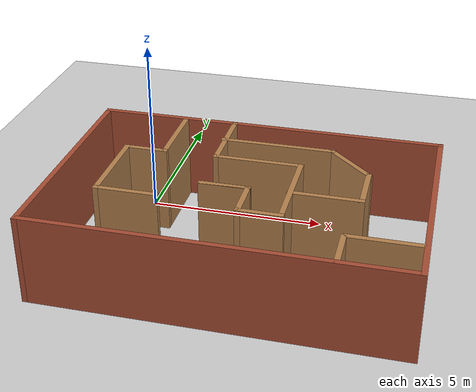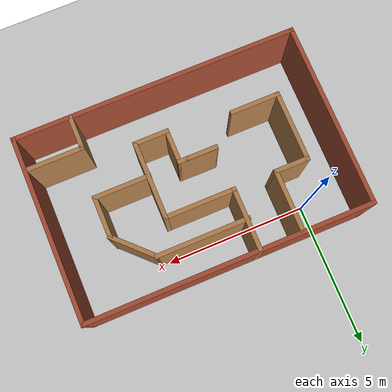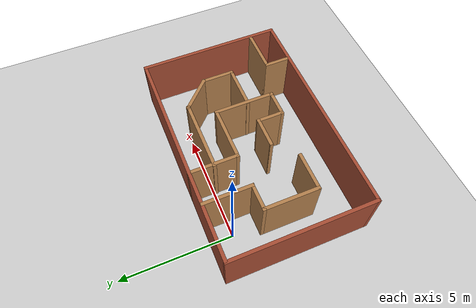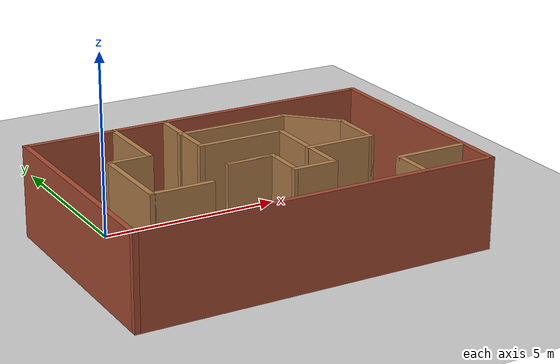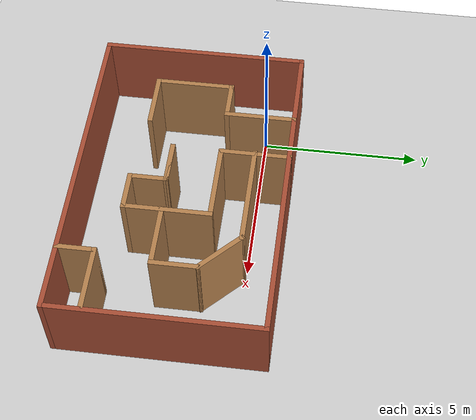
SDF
<sdf version="1.7">
 <world name="default">
  <light name="sun" type="directional">
   <pose>0 0 10 0 -0 0</pose>
   <diffuse>0.8 0.8 0.8 1</diffuse>
   <specular>0.2 0.2 0.2 1</specular>
   <attenuation>
    <range>1000</range>
    <constant>0.9</constant>
    <linear>0.01</linear>
    <quadratic>0.001</quadratic>
   </attenuation>
   <direction>-0.5 0.1 -0.9</direction>
   <spot><inner_angle>0</inner_angle><outer_angle>0</outer_angle><falloff>0</falloff></spot>
  </light>
  <model name="ground_plane">
   <static>1</static>
   <link name="link">
    <collision name="collision">
     <geometry><plane><normal>0 0 1</normal><size>100 100</size></plane></geometry>
     <surface>
      <contact><collide_bitmask>65535</collide_bitmask></contact>
      <friction><ode><mu>100</mu><mu2>50</mu2></ode></friction>
     </surface>
    </collision>
    <visual name="visual">
     <cast_shadows>0</cast_shadows>
     <geometry><plane><normal>0 0 1</normal><size>100 100</size></plane></geometry>
     <material>
      <script><uri>file://media/materials/scripts/gazebo.material</uri><name>Gazebo/Grey</name></script>
     </material>
    </visual>
   </link>
  </model>
  <gravity>0 0 -9.8</gravity>
  <magnetic_field>6e-06 2.3e-05 -4.2e-05</magnetic_field>
  <atmosphere type="adiabatic"/>
  <physics type="ode">
   <max_step_size>0.001</max_step_size>
   <real_time_factor>1</real_time_factor>
   <real_time_update_rate>1000</real_time_update_rate>
  </physics>
  <scene><ambient>0.4 0.4 0.4 1</ambient><background>0.7 0.7 0.7 1</background><shadows>1</shadows></scene>
  <audio><device>default</device></audio>
  <spherical_coordinates>
   <surface_model>EARTH_WGS84</surface_model>
   <latitude_deg>0</latitude_deg>
   <longitude_deg>0</longitude_deg>
   <elevation>0</elevation>
   <heading_deg>0</heading_deg>
  </spherical_coordinates>
  <model name="maze">
   <pose>3.24391 -1.62073 0 0 -0 0</pose>
   <link name="Wall_0">
    <collision name="Wall_0_Collision">
     <geometry><box><size>10 0.15 2.5</size></box></geometry>
     <pose>0 0 1.25 0 -0 0</pose>
    </collision>
    <visual name="Wall_0_Visual">
     <pose>0 0 1.25 0 -0 0</pose>
     <geometry><box><size>10 0.15 2.5</size></box></geometry>
     <material>
      <script><uri>file://media/materials/scripts/gazebo.material</uri><name>Gazebo/Bricks</name></script>
      <ambient>1 1 1 1</ambient>
     </material>
     <meta><layer>0</layer></meta>
    </visual>
    <pose>-0 2.5825 0 0 -0 0</pose>
   </link>
   <link name="Wall_1">
    <collision name="Wall_1_Collision">
     <geometry><box><size>6.5 0.15 2.5</size></box></geometry>
     <pose>0 0 1.25 0 -0 0</pose>
    </collision>
    <visual name="Wall_1_Visual">
     <pose>0 0 1.25 0 -0 0</pose>
     <geometry><box><size>6.5 0.15 2.5</size></box></geometry>
     <material>
      <script><uri>file://media/materials/scripts/gazebo.material</uri><name>Gazebo/Bricks</name></script>
      <ambient>1 1 1 1</ambient>
     </material>
     <meta><layer>0</layer></meta>
    </visual>
    <pose>4.925 -0.5925 0 0 -0 -1.5708</pose>
   </link>
   <link name="Wall_15">
    <collision name="Wall_15_Collision">
     <geometry><box><size>2.75 0.15 2.5</size></box></geometry>
     <pose>0 0 1.25 0 -0 0</pose>
    </collision>
    <visual name="Wall_15_Visual">
     <pose>0 0 1.25 0 -0 0</pose>
     <geometry><box><size>2.75 0.15 2.5</size></box></geometry>
     <material>
      <script><uri>file://media/materials/scripts/gazebo.material</uri><name>Gazebo/Wood</name></script>
      <ambient>1 1 1 1</ambient>
     </material>
     <meta><layer>0</layer></meta>
    </visual>
    <pose>1.346 -0.81543 0 0 -0 -1.5708</pose>
   </link>
   <link name="Wall_16">
    <collision name="Wall_16_Collision">
     <geometry><box><size>1.25 0.15 2.5</size></box></geometry>
     <pose>0 0 1.25 0 -0 0</pose>
    </collision>
    <visual name="Wall_16_Visual">
     <pose>0 0 1.25 0 -0 0</pose>
     <geometry><box><size>1.25 0.15 2.5</size></box></geometry>
     <material>
      <script><uri>file://media/materials/scripts/gazebo.material</uri><name>Gazebo/Wood</name></script>
      <ambient>1 1 1 1</ambient>
     </material>
     <meta><layer>0</layer></meta>
    </visual>
    <pose>0.795999 -2.11543 0 0 -0 3.14159</pose>
   </link>
   <link name="Wall_17">
    <collision name="Wall_17_Collision">
     <geometry><box><size>1.25 0.15 2.5</size></box></geometry>
     <pose>0 0 1.25 0 -0 0</pose>
    </collision>
    <visual name="Wall_17_Visual">
     <pose>0 0 1.25 0 -0 0</pose>
     <geometry><box><size>1.25 0.15 2.5</size></box></geometry>
     <material>
      <script><uri>file://media/materials/scripts/gazebo.material</uri><name>Gazebo/Wood</name></script>
      <ambient>1 1 1 1</ambient>
     </material>
     <meta><layer>0</layer></meta>
    </visual>
    <pose>0.245999 -1.56543 0 0 -0 1.5708</pose>
   </link>
   <link name="Wall_18">
    <collision name="Wall_18_Collision">
     <geometry><box><size>1.36505 0.15 2.5</size></box></geometry>
     <pose>0 0 1.25 0 -0 0</pose>
    </collision>
    <visual name="Wall_18_Visual">
     <pose>0 0 1.25 0 -0 0</pose>
     <geometry><box><size>1.36505 0.15 2.5</size></box></geometry>
     <material>
      <script><uri>file://media/materials/scripts/gazebo.material</uri><name>Gazebo/Wood</name></script>
      <ambient>1 1 1 1</ambient>
     </material>
     <meta><layer>0</layer></meta>
    </visual>
    <pose>-0.361501 -1.00968 0 0 -0 3.13213</pose>
   </link>
   <link name="Wall_2">
    <collision name="Wall_2_Collision">
     <geometry><box><size>10 0.15 2.5</size></box></geometry>
     <pose>0 0 1.25 0 -0 0</pose>
    </collision>
    <visual name="Wall_2_Visual">
     <pose>0 0 1.25 0 -0 0</pose>
     <geometry><box><size>10 0.15 2.5</size></box></geometry>
     <material>
      <script><uri>file://media/materials/scripts/gazebo.material</uri><name>Gazebo/Bricks</name></script>
      <ambient>1 1 1 1</ambient>
     </material>
     <meta><layer>0</layer></meta>
    </visual>
    <pose>-0 -3.7675 0 0 -0 3.14159</pose>
   </link>
   <link name="Wall_21">
    <collision name="Wall_21_Collision">
     <geometry><box><size>2.5 0.15 2.5</size></box></geometry>
     <pose>0 0 1.25 0 -0 0</pose>
    </collision>
    <visual name="Wall_21_Visual">
     <pose>0 0 1.25 0 -0 0</pose>
     <geometry><box><size>2.5 0.15 2.5</size></box></geometry>
     <material>
      <script><uri>file://media/materials/scripts/gazebo.material</uri><name>Gazebo/Wood</name></script>
      <ambient>1 1 1 1</ambient>
     </material>
     <meta><layer>0</layer></meta>
    </visual>
    <pose>0.170999 0.48457 0 0 -0 3.14159</pose>
   </link>
   <link name="Wall_22">
    <collision name="Wall_22_Collision">
     <geometry><box><size>2.25 0.15 2.5</size></box></geometry>
     <pose>0 0 1.25 0 -0 0</pose>
    </collision>
    <visual name="Wall_22_Visual">
     <pose>0 0 1.25 0 -0 0</pose>
     <geometry><box><size>2.25 0.15 2.5</size></box></geometry>
     <material>
      <script><uri>file://media/materials/scripts/gazebo.material</uri><name>Gazebo/Wood</name></script>
      <ambient>1 1 1 1</ambient>
     </material>
     <meta><layer>0</layer></meta>
    </visual>
    <pose>-1.004 1.53457 0 0 -0 1.5708</pose>
   </link>
   <link name="Wall_24">
    <collision name="Wall_24_Collision">
     <geometry><box><size>1.4 0.15 2.5</size></box></geometry>
     <pose>0 0 1.25 0 -0 0</pose>
    </collision>
    <visual name="Wall_24_Visual">
     <pose>0 0 1.25 0 -0 0</pose>
     <geometry><box><size>1.4 0.15 2.5</size></box></geometry>
     <material>
      <script><uri>file://media/materials/scripts/gazebo.material</uri><name>Gazebo/Wood</name></script>
      <ambient>1 1 1 1</ambient>
     </material>
     <meta><layer>0</layer></meta>
    </visual>
    <pose>-0.379001 -1.01543 0 0 -0 0</pose>
   </link>
   <link name="Wall_26">
    <collision name="Wall_26_Collision">
     <geometry><box><size>2 0.15 2.5</size></box></geometry>
     <pose>0 0 1.25 0 -0 0</pose>
    </collision>
    <visual name="Wall_26_Visual">
     <pose>0 0 1.25 0 -0 0</pose>
     <geometry><box><size>2 0.15 2.5</size></box></geometry>
     <material>
      <script><uri>file://media/materials/scripts/gazebo.material</uri><name>Gazebo/Wood</name></script>
      <ambient>1 1 1 1</ambient>
     </material>
     <meta><layer>0</layer></meta>
    </visual>
    <pose>2.25852 -0.964221 0 0 -0 0</pose>
   </link>
   <link name="Wall_27">
    <collision name="Wall_27_Collision">
     <geometry><box><size>1.5 0.15 2.5</size></box></geometry>
     <pose>0 0 1.25 0 -0 0</pose>
    </collision>
    <visual name="Wall_27_Visual">
     <pose>0 0 1.25 0 -0 0</pose>
     <geometry><box><size>1.5 0.15 2.5</size></box></geometry>
     <material>
      <script><uri>file://media/materials/scripts/gazebo.material</uri><name>Gazebo/Wood</name></script>
      <ambient>1 1 1 1</ambient>
     </material>
     <meta><layer>0</layer></meta>
    </visual>
    <pose>3.18352 -0.289221 0 0 -0 1.5708</pose>
   </link>
   <link name="Wall_28">
    <collision name="Wall_28_Collision">
     <geometry><box><size>1.75 0.15 2.5</size></box></geometry>
     <pose>0 0 1.25 0 -0 0</pose>
    </collision>
    <visual name="Wall_28_Visual">
     <pose>0 0 1.25 0 -0 0</pose>
     <geometry><box><size>1.75 0.15 2.5</size></box></geometry>
     <material>
      <script><uri>file://media/materials/scripts/gazebo.material</uri><name>Gazebo/Wood</name></script>
      <ambient>1 1 1 1</ambient>
     </material>
     <meta><layer>0</layer></meta>
    </visual>
    <pose>2.61783 0.951464 0 0 -0 2.35619</pose>
   </link>
   <link name="Wall_29">
    <collision name="Wall_29_Collision">
     <geometry><box><size>3.25 0.15 2.5</size></box></geometry>
     <pose>0 0 1.25 0 -0 0</pose>
    </collision>
    <visual name="Wall_29_Visual">
     <pose>0 0 1.25 0 -0 0</pose>
     <geometry><box><size>3.25 0.15 2.5</size></box></geometry>
     <material>
      <script><uri>file://media/materials/scripts/gazebo.material</uri><name>Gazebo/Wood</name></script>
      <ambient>1 1 1 1</ambient>
     </material>
     <meta><layer>0</layer></meta>
    </visual>
    <pose>0.502145 1.51715 0 0 -0 3.14159</pose>
   </link>
   <link name="Wall_3">
    <collision name="Wall_3_Collision">
     <geometry><box><size>6.5 0.15 2.5</size></box></geometry>
     <pose>0 0 1.25 0 -0 0</pose>
    </collision>
    <visual name="Wall_3_Visual">
     <pose>0 0 1.25 0 -0 0</pose>
     <geometry><box><size>6.5 0.15 2.5</size></box></geometry>
     <material>
      <script><uri>file://media/materials/scripts/gazebo.material</uri><name>Gazebo/Bricks</name></script>
      <ambient>1 1 1 1</ambient>
     </material>
     <meta><layer>0</layer></meta>
    </visual>
    <pose>-4.925 -0.5925 0 0 -0 1.5708</pose>
   </link>
   <link name="Wall_31">
    <collision name="Wall_31_Collision">
     <geometry><box><size>1.25 0.15 2.5</size></box></geometry>
     <pose>0 0 1.25 0 -0 0</pose>
    </collision>
    <visual name="Wall_31_Visual">
     <pose>0 0 1.25 0 -0 0</pose>
     <geometry><box><size>1.25 0.15 2.5</size></box></geometry>
     <material>
      <script><uri>file://media/materials/scripts/gazebo.material</uri><name>Gazebo/Wood</name></script>
      <ambient>1 1 1 1</ambient>
     </material>
     <meta><layer>0</layer></meta>
    </visual>
    <pose>2.96652 -3.19722 0 0 -0 1.5708</pose>
   </link>
   <link name="Wall_32">
    <collision name="Wall_32_Collision">
     <geometry><box><size>2 0.15 2.5</size></box></geometry>
     <pose>0 0 1.25 0 -0 0</pose>
    </collision>
    <visual name="Wall_32_Visual">
     <pose>0 0 1.25 0 -0 0</pose>
     <geometry><box><size>2 0.15 2.5</size></box></geometry>
     <material>
      <script><uri>file://media/materials/scripts/gazebo.material</uri><name>Gazebo/Wood</name></script>
      <ambient>1 1 1 1</ambient>
     </material>
     <meta><layer>0</layer></meta>
    </visual>
    <pose>3.89152 -2.64722 0 0 -0 0</pose>
   </link>
   <link name="Wall_5">
    <collision name="Wall_5_Collision">
     <geometry><box><size>2.25 0.15 2.5</size></box></geometry>
     <pose>0 0 1.25 0 -0 0</pose>
    </collision>
    <visual name="Wall_5_Visual">
     <pose>0 0 1.25 0 -0 0</pose>
     <geometry><box><size>2.25 0.15 2.5</size></box></geometry>
     <material>
      <script><uri>file://media/materials/scripts/gazebo.material</uri><name>Gazebo/Wood</name></script>
      <ambient>1 1 1 1</ambient>
     </material>
     <meta><layer>0</layer></meta>
    </visual>
    <pose>-2.475 1.5125 0 0 -0 -1.5708</pose>
   </link>
   <link name="Wall_6">
    <collision name="Wall_6_Collision">
     <geometry><box><size>1.25 0.15 2.5</size></box></geometry>
     <pose>0 0 1.25 0 -0 0</pose>
    </collision>
    <visual name="Wall_6_Visual">
     <pose>0 0 1.25 0 -0 0</pose>
     <geometry><box><size>1.25 0.15 2.5</size></box></geometry>
     <material>
      <script><uri>file://media/materials/scripts/gazebo.material</uri><name>Gazebo/Wood</name></script>
      <ambient>1 1 1 1</ambient>
     </material>
     <meta><layer>0</layer></meta>
    </visual>
    <pose>-3.025 0.4625 0 0 -0 3.14159</pose>
   </link>
   <link name="Wall_7">
    <collision name="Wall_7_Collision">
     <geometry><box><size>2.5 0.15 2.5</size></box></geometry>
     <pose>0 0 1.25 0 -0 0</pose>
    </collision>
    <visual name="Wall_7_Visual">
     <pose>0 0 1.25 0 -0 0</pose>
     <geometry><box><size>2.5 0.15 2.5</size></box></geometry>
     <material>
      <script><uri>file://media/materials/scripts/gazebo.material</uri><name>Gazebo/Wood</name></script>
      <ambient>1 1 1 1</ambient>
     </material>
     <meta><layer>0</layer></meta>
    </visual>
    <pose>-3.575 -0.7125 0 0 -0 -1.5708</pose>
   </link>
   <link name="Wall_8">
    <collision name="Wall_8_Collision">
     <geometry><box><size>1.75 0.15 2.5</size></box></geometry>
     <pose>0 0 1.25 0 -0 0</pose>
    </collision>
    <visual name="Wall_8_Visual">
     <pose>0 0 1.25 0 -0 0</pose>
     <geometry><box><size>1.75 0.15 2.5</size></box></geometry>
     <material>
      <script><uri>file://media/materials/scripts/gazebo.material</uri><name>Gazebo/Wood</name></script>
      <ambient>1 1 1 1</ambient>
     </material>
     <meta><layer>0</layer></meta>
    </visual>
    <pose>-2.775 -1.8875 0 0 -0 0</pose>
   </link>
   <static>1</static>
  </model>
 </world>
</sdf>
